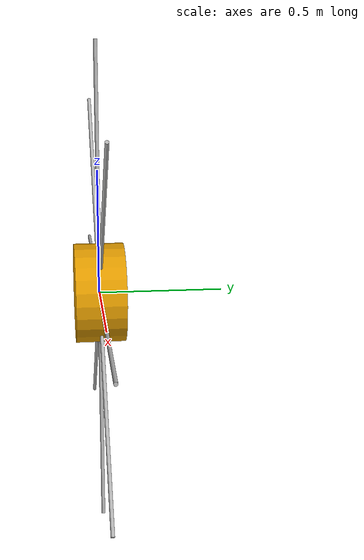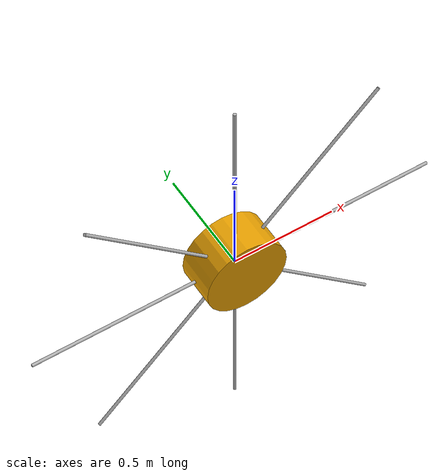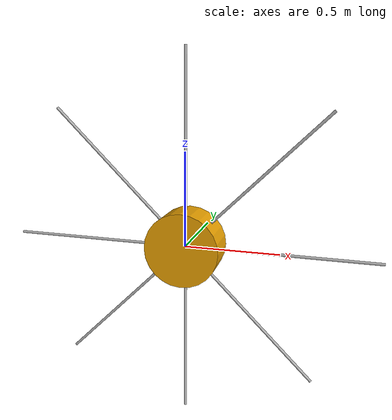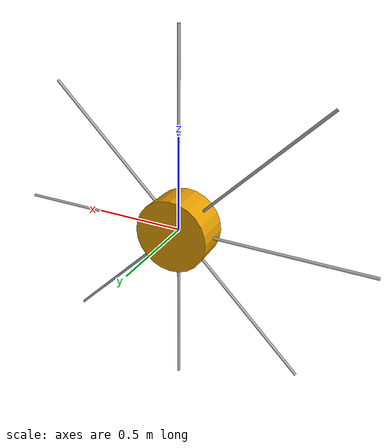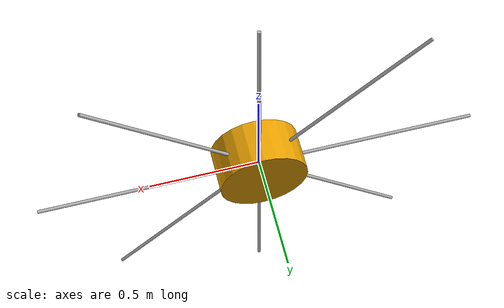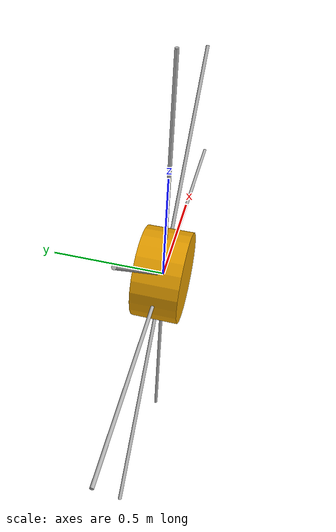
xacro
<?xml version="1.0"?>

<robot xmlns="https://drake.mit.edu"
 xmlns:xsi="http://www.w3.org/2001/XMLSchema-instance"
 xsi:schemaLocation="https://drake.mit.edu ../../doc/drakeURDF.xsd"
 xmlns:xacro="http://ros.org/wiki/xacro" name="RimlessWheel">

  <xacro:property name="m" value="1" />
  <!-- I have to add rotational inertia about the COM to the model to have a well-defined flight phase, even though the ideal rimless wheel model does not have it. -->
  <xacro:property name="I" value="1" />
  <xacro:property name="l" value="1" />
  <xacro:property name="alpha" value="0.3927" />

  <link name="hub" >
    <inertial>
      <mass value="${m}"/>
      <inertia ixx="1"  ixy="0"  ixz="0" iyy="${I}" iyz="0" izz="1" />
    </inertial>
    <visual>
      <origin rpy="1.5708 0 0" />
      <geometry>
        <cylinder radius=".2" length=".2"/>
      </geometry>
    </visual>
    <sensor type="imu">
      <pose xyz="0 0 0" rpy="0 0 0"/>
    </sensor>
  </link>

  <xacro:macro name="leg" params="n">
    <link name="spoke${n}">
      <visual>
      	<origin xyz="0 0 ${-l/2}" rpy="0 0 0" />
	      <geometry>
	        <cylinder radius="0.0075" length="${l}"/>
      	</geometry>
        <material>
          <color rgba=".7 .7 .7 1" />
        </material>
      </visual>
      <collision>
        <origin xyz="0 0 ${-l}" rpy="0 0 0"/>
        <geometry>
          <sphere radius="0"/>
        </geometry>
      </collision>
    </link>
    <joint name="spoke${n}_weld" type="fixed">
      <origin xyz="0 0 0" rpy="0 ${(n-1)*2*alpha} 0" />
      <parent link="hub"/>
      <child link="spoke${n}"/>
    </joint>
  </xacro:macro>

  <xacro:leg n="1" />
  <xacro:leg n="2" />
  <xacro:leg n="3" />
  <xacro:leg n="4" />
  <xacro:leg n="5" />
  <xacro:leg n="6" />
  <xacro:leg n="7" />
  <xacro:leg n="8" />

</robot>
